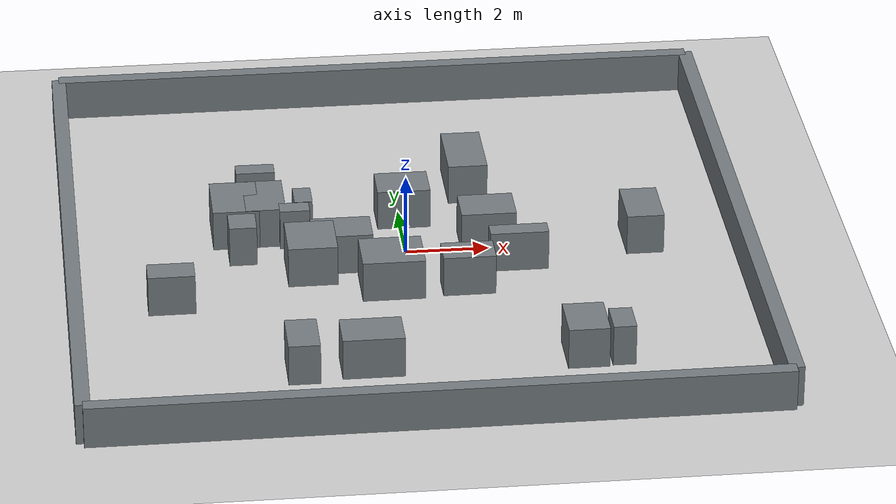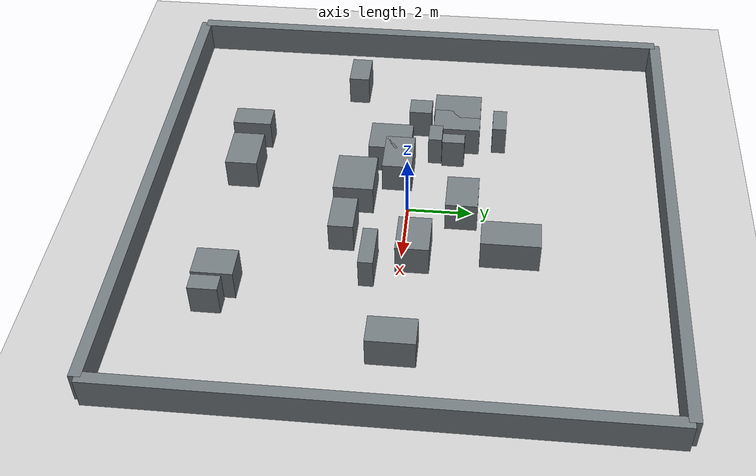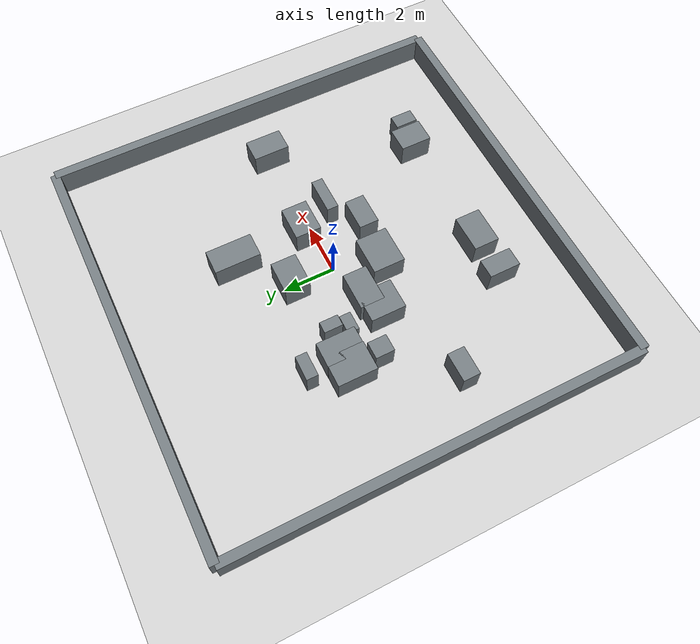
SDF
<?xml version="1.0" ?>
<sdf version="1.10">
  <world name="random_blocks_1">
    <physics name="1ms" type="ignored">
      <max_step_size>0.001</max_step_size>
      <real_time_factor>1.0</real_time_factor>
    </physics>
    <plugin filename="gz-sim-physics-system" name="gz::sim::systems::Physics"/>
    <plugin filename="gz-sim-user-commands-system" name="gz::sim::systems::UserCommands"/>
    <plugin filename="gz-sim-scene-broadcaster-system" name="gz::sim::systems::SceneBroadcaster"/>
    <light name="sun" type="directional">
      <pose>0 0 10 0 0 0</pose>
      <diffuse>0.8 0.8 0.8 1</diffuse>
      <specular>0.2 0.2 0.2 1</specular>
      <direction>-0.5 0.1 -0.9</direction>
    </light>
    <model name="ground_plane">
      <static>true</static>
      <link name="link">
        <collision name="collision"><geometry><plane><normal>0 0 1</normal><size>30 30</size></plane></geometry></collision>
        <visual name="visual"><geometry><plane><normal>0 0 1</normal><size>30 30</size></plane></geometry></visual>
      </link>
    </model>

    <model name="boundary_north">
      <static>true</static>
      <pose>0.000 8.000 0.500 0 0 0</pose>
      <link name="link">
        <collision name="collision">
          <geometry><box><size>16.000 0.350 1.000</size></box></geometry>
        </collision>
        <visual name="visual">
          <geometry><box><size>16.000 0.350 1.000</size></box></geometry>
          <material><ambient>0.45 0.48 0.50 1</ambient><diffuse>0.45 0.48 0.50 1</diffuse></material>
        </visual>
      </link>
    </model>
    <model name="boundary_south">
      <static>true</static>
      <pose>0.000 -8.000 0.500 0 0 0</pose>
      <link name="link">
        <collision name="collision">
          <geometry><box><size>16.000 0.350 1.000</size></box></geometry>
        </collision>
        <visual name="visual">
          <geometry><box><size>16.000 0.350 1.000</size></box></geometry>
          <material><ambient>0.45 0.48 0.50 1</ambient><diffuse>0.45 0.48 0.50 1</diffuse></material>
        </visual>
      </link>
    </model>
    <model name="boundary_west">
      <static>true</static>
      <pose>-8.000 0.000 0.500 0 0 0</pose>
      <link name="link">
        <collision name="collision">
          <geometry><box><size>0.350 16.000 1.000</size></box></geometry>
        </collision>
        <visual name="visual">
          <geometry><box><size>0.350 16.000 1.000</size></box></geometry>
          <material><ambient>0.45 0.48 0.50 1</ambient><diffuse>0.45 0.48 0.50 1</diffuse></material>
        </visual>
      </link>
    </model>
    <model name="boundary_east">
      <static>true</static>
      <pose>8.000 0.000 0.500 0 0 0</pose>
      <link name="link">
        <collision name="collision">
          <geometry><box><size>0.350 16.000 1.000</size></box></geometry>
        </collision>
        <visual name="visual">
          <geometry><box><size>0.350 16.000 1.000</size></box></geometry>
          <material><ambient>0.45 0.48 0.50 1</ambient><diffuse>0.45 0.48 0.50 1</diffuse></material>
        </visual>
      </link>
    </model>
    <model name="block_1_0">
      <static>true</static>
      <pose>1.287 -1.832 0.500 0 0 0</pose>
      <link name="link">
        <collision name="collision">
          <geometry><box><size>1.240 0.757 1.000</size></box></geometry>
        </collision>
        <visual name="visual">
          <geometry><box><size>1.240 0.757 1.000</size></box></geometry>
          <material><ambient>0.45 0.48 0.50 1</ambient><diffuse>0.45 0.48 0.50 1</diffuse></material>
        </visual>
      </link>
    </model>
    <model name="block_1_1">
      <static>true</static>
      <pose>-4.014 1.318 0.500 0 0 0</pose>
      <link name="link">
        <collision name="collision">
          <geometry><box><size>1.117 1.504 1.000</size></box></geometry>
        </collision>
        <visual name="visual">
          <geometry><box><size>1.117 1.504 1.000</size></box></geometry>
          <material><ambient>0.45 0.48 0.50 1</ambient><diffuse>0.45 0.48 0.50 1</diffuse></material>
        </visual>
      </link>
    </model>
    <model name="block_1_2">
      <static>true</static>
      <pose>1.984 0.357 0.500 0 0 0</pose>
      <link name="link">
        <collision name="collision">
          <geometry><box><size>1.319 1.006 1.000</size></box></geometry>
        </collision>
        <visual name="visual">
          <geometry><box><size>1.319 1.006 1.000</size></box></geometry>
          <material><ambient>0.45 0.48 0.50 1</ambient><diffuse>0.45 0.48 0.50 1</diffuse></material>
        </visual>
      </link>
    </model>
    <model name="block_1_3">
      <static>true</static>
      <pose>5.692 0.075 0.500 0 0 0</pose>
      <link name="link">
        <collision name="collision">
          <geometry><box><size>0.890 1.410 1.000</size></box></geometry>
        </collision>
        <visual name="visual">
          <geometry><box><size>0.890 1.410 1.000</size></box></geometry>
          <material><ambient>0.45 0.48 0.50 1</ambient><diffuse>0.45 0.48 0.50 1</diffuse></material>
        </visual>
      </link>
    </model>
    <model name="block_1_4">
      <static>true</static>
      <pose>2.597 -0.930 0.500 0 0 0</pose>
      <link name="link">
        <collision name="collision">
          <geometry><box><size>1.392 0.443 1.000</size></box></geometry>
        </collision>
        <visual name="visual">
          <geometry><box><size>1.392 0.443 1.000</size></box></geometry>
          <material><ambient>0.45 0.48 0.50 1</ambient><diffuse>0.45 0.48 0.50 1</diffuse></material>
        </visual>
      </link>
    </model>
    <model name="block_1_5">
      <static>true</static>
      <pose>-1.585 -0.422 0.500 0 0 0</pose>
      <link name="link">
        <collision name="collision">
          <geometry><box><size>1.433 0.934 1.000</size></box></geometry>
        </collision>
        <visual name="visual">
          <geometry><box><size>1.433 0.934 1.000</size></box></geometry>
          <material><ambient>0.45 0.48 0.50 1</ambient><diffuse>0.45 0.48 0.50 1</diffuse></material>
        </visual>
      </link>
    </model>
    <model name="block_1_6">
      <static>true</static>
      <pose>-2.375 1.265 0.500 0 0 0</pose>
      <link name="link">
        <collision name="collision">
          <geometry><box><size>0.432 0.710 1.000</size></box></geometry>
        </collision>
        <visual name="visual">
          <geometry><box><size>0.432 0.710 1.000</size></box></geometry>
          <material><ambient>0.45 0.48 0.50 1</ambient><diffuse>0.45 0.48 0.50 1</diffuse></material>
        </visual>
      </link>
    </model>
    <model name="block_1_7">
      <static>true</static>
      <pose>-3.907 0.103 0.500 0 0 0</pose>
      <link name="link">
        <collision name="collision">
          <geometry><box><size>0.656 0.723 1.000</size></box></geometry>
        </collision>
        <visual name="visual">
          <geometry><box><size>0.656 0.723 1.000</size></box></geometry>
          <material><ambient>0.45 0.48 0.50 1</ambient><diffuse>0.45 0.48 0.50 1</diffuse></material>
        </visual>
      </link>
    </model>
    <model name="block_1_8">
      <static>true</static>
      <pose>-2.617 0.679 0.500 0 0 0</pose>
      <link name="link">
        <collision name="collision">
          <geometry><box><size>0.719 0.430 1.000</size></box></geometry>
        </collision>
        <visual name="visual">
          <geometry><box><size>0.719 0.430 1.000</size></box></geometry>
          <material><ambient>0.45 0.48 0.50 1</ambient><diffuse>0.45 0.48 0.50 1</diffuse></material>
        </visual>
      </link>
    </model>
    <model name="block_1_9">
      <static>true</static>
      <pose>-5.727 -2.121 0.500 0 0 0</pose>
      <link name="link">
        <collision name="collision">
          <geometry><box><size>1.107 0.660 1.000</size></box></geometry>
        </collision>
        <visual name="visual">
          <geometry><box><size>1.107 0.660 1.000</size></box></geometry>
          <material><ambient>0.45 0.48 0.50 1</ambient><diffuse>0.45 0.48 0.50 1</diffuse></material>
        </visual>
      </link>
    </model>
    <model name="block_1_10">
      <static>true</static>
      <pose>4.434 -5.363 0.500 0 0 0</pose>
      <link name="link">
        <collision name="collision">
          <geometry><box><size>0.533 0.866 1.000</size></box></geometry>
        </collision>
        <visual name="visual">
          <geometry><box><size>0.533 0.866 1.000</size></box></geometry>
          <material><ambient>0.45 0.48 0.50 1</ambient><diffuse>0.45 0.48 0.50 1</diffuse></material>
        </visual>
      </link>
    </model>
    <model name="block_1_11">
      <static>true</static>
      <pose>-1.320 -5.306 0.500 0 0 0</pose>
      <link name="link">
        <collision name="collision">
          <geometry><box><size>1.430 0.991 1.000</size></box></geometry>
        </collision>
        <visual name="visual">
          <geometry><box><size>1.430 0.991 1.000</size></box></geometry>
          <material><ambient>0.45 0.48 0.50 1</ambient><diffuse>0.45 0.48 0.50 1</diffuse></material>
        </visual>
      </link>
    </model>
    <model name="block_1_12">
      <static>true</static>
      <pose>-2.912 -5.321 0.500 0 0 0</pose>
      <link name="link">
        <collision name="collision">
          <geometry><box><size>0.734 1.223 1.000</size></box></geometry>
        </collision>
        <visual name="visual">
          <geometry><box><size>0.734 1.223 1.000</size></box></geometry>
          <material><ambient>0.45 0.48 0.50 1</ambient><diffuse>0.45 0.48 0.50 1</diffuse></material>
        </visual>
      </link>
    </model>
    <model name="block_1_13">
      <static>true</static>
      <pose>3.611 -5.228 0.500 0 0 0</pose>
      <link name="link">
        <collision name="collision">
          <geometry><box><size>0.956 1.225 1.000</size></box></geometry>
        </collision>
        <visual name="visual">
          <geometry><box><size>0.956 1.225 1.000</size></box></geometry>
          <material><ambient>0.45 0.48 0.50 1</ambient><diffuse>0.45 0.48 0.50 1</diffuse></material>
        </visual>
      </link>
    </model>
    <model name="block_1_14">
      <static>true</static>
      <pose>0.077 1.688 0.500 0 0 0</pose>
      <link name="link">
        <collision name="collision">
          <geometry><box><size>1.277 0.980 1.000</size></box></geometry>
        </collision>
        <visual name="visual">
          <geometry><box><size>1.277 0.980 1.000</size></box></geometry>
          <material><ambient>0.45 0.48 0.50 1</ambient><diffuse>0.45 0.48 0.50 1</diffuse></material>
        </visual>
      </link>
    </model>
    <model name="block_1_15">
      <static>true</static>
      <pose>-2.337 -0.740 0.500 0 0 0</pose>
      <link name="link">
        <collision name="collision">
          <geometry><box><size>1.173 1.344 1.000</size></box></geometry>
        </collision>
        <visual name="visual">
          <geometry><box><size>1.173 1.344 1.000</size></box></geometry>
          <material><ambient>0.45 0.48 0.50 1</ambient><diffuse>0.45 0.48 0.50 1</diffuse></material>
        </visual>
      </link>
    </model>
    <model name="block_1_16">
      <static>true</static>
      <pose>-3.302 1.332 0.500 0 0 0</pose>
      <link name="link">
        <collision name="collision">
          <geometry><box><size>0.959 1.490 1.000</size></box></geometry>
        </collision>
        <visual name="visual">
          <geometry><box><size>0.959 1.490 1.000</size></box></geometry>
          <material><ambient>0.45 0.48 0.50 1</ambient><diffuse>0.45 0.48 0.50 1</diffuse></material>
        </visual>
      </link>
    </model>
    <model name="block_1_17">
      <static>true</static>
      <pose>-3.420 2.713 0.500 0 0 0</pose>
      <link name="link">
        <collision name="collision">
          <geometry><box><size>0.939 0.441 1.000</size></box></geometry>
        </collision>
        <visual name="visual">
          <geometry><box><size>0.939 0.441 1.000</size></box></geometry>
          <material><ambient>0.45 0.48 0.50 1</ambient><diffuse>0.45 0.48 0.50 1</diffuse></material>
        </visual>
      </link>
    </model>
    <model name="block_1_18">
      <static>true</static>
      <pose>-0.502 -1.665 0.500 0 0 0</pose>
      <link name="link">
        <collision name="collision">
          <geometry><box><size>1.482 1.230 1.000</size></box></geometry>
        </collision>
        <visual name="visual">
          <geometry><box><size>1.482 1.230 1.000</size></box></geometry>
          <material><ambient>0.45 0.48 0.50 1</ambient><diffuse>0.45 0.48 0.50 1</diffuse></material>
        </visual>
      </link>
    </model>
    <model name="block_1_19">
      <static>true</static>
      <pose>1.758 3.215 0.500 0 0 0</pose>
      <link name="link">
        <collision name="collision">
          <geometry><box><size>0.952 1.775 1.000</size></box></geometry>
        </collision>
        <visual name="visual">
          <geometry><box><size>0.952 1.775 1.000</size></box></geometry>
          <material><ambient>0.45 0.48 0.50 1</ambient><diffuse>0.45 0.48 0.50 1</diffuse></material>
        </visual>
      </link>
    </model>
  </world>
</sdf>
